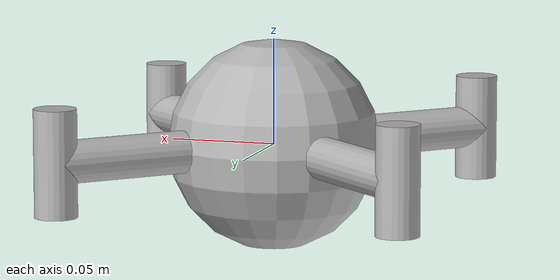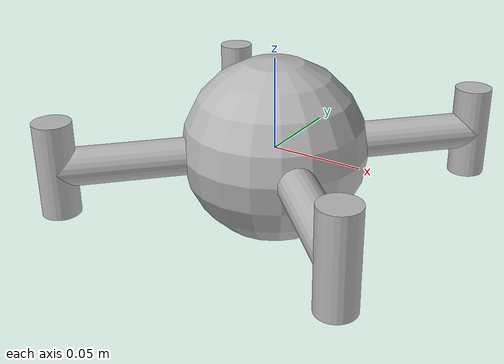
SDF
<sdf version='1.7'>
  <model name='multirotor'>
    <link name='base_link'>
      <inertial>
        <pose>0 0 0 0 -0 0</pose>
        <mass>0.257</mass>
        <inertia>
          <ixx>0.0004933</ixx>
          <ixy>-1e-07</ixy>
          <ixz>-2.1e-06</ixz>
          <iyy>0.0005977</iyy>
          <iyz>-3.7e-06</iyz>
          <izz>0.0008339</izz>
        </inertia>
      </inertial>
      <collision name='base_link_collision'>
        <pose>0 0 0 0 -0 0</pose>
        <geometry>
          <box>
            <size>0.11 0.11 0.11</size>
          </box>
        </geometry>
        <surface>
          <contact>
            <ode>
              <min_depth>0.001</min_depth>
              <max_vel>0</max_vel>
            </ode>
          </contact>
          <friction>
            <ode/>
          </friction>
        </surface>
      </collision>
      <visual name='base_link_visual'>
        <pose>0 0 0 0 -0 0</pose>
        <geometry>
          <sphere>
            <radius>0.05</radius>
          </sphere>
        </geometry>
      </visual>
      <gravity>1</gravity>
      <velocity_decay/>
    </link>
    <link name='/imu_link'>
      <pose>0 0 0 0 0 0</pose>
      <inertial>
        <pose>0 0 0 0 0 0</pose>
        <mass>0.0000001</mass>
        <inertia>
          <ixx>1e-09</ixx>
          <ixy>0</ixy>
          <ixz>0</ixz>
          <iyy>1e-09</iyy>
          <iyz>0</iyz>
          <izz>1e-09</izz>
        </inertia>
      </inertial>
    </link>
    <joint name='/imu_joint' type='revolute'>
      <child>/imu_link</child>
      <parent>base_link</parent>
      <axis>
        <xyz>1 0 0</xyz>
        <limit>
          <lower>0</lower>
          <upper>0</upper>
          <effort>0</effort>
          <velocity>0</velocity>
        </limit>
        <dynamics>
          <spring_reference>0</spring_reference>
          <spring_stiffness>0</spring_stiffness>
        </dynamics>
        <use_parent_model_frame>1</use_parent_model_frame>
      </axis>
    </joint>
    <joint name='base_link_to_arm_motor_0' type='fixed'>
      <pose relative_to='base_link'>0.04 -0.04 0 -1.5708 0 -2.35619</pose>
      <parent>base_link</parent>
      <child>arm_motor_0</child>
      <axis>
        <dynamics>
          <spring_reference>0</spring_reference>
          <spring_stiffness>0</spring_stiffness>
        </dynamics>
        <xyz>0 0 1</xyz>
        <limit>
          <lower>-1e+16</lower>
          <upper>1e+16</upper>
        </limit>
      </axis>
      <physics>
        <ode>
          <limit>
            <cfm>0</cfm>
            <erp>0.2</erp>
          </limit>
        </ode>
      </physics>
    </joint>
    <link name='arm_motor_0'>
      <pose relative_to='base_link_to_arm_motor_0'>0 0 0 0 -0 0</pose>
      <inertial>
        <pose>0 0 0 0 -0 0</pose>
        <mass>1e-07</mass>
        <inertia>
          <ixx>1e-09</ixx>
          <ixy>1e-09</ixy>
          <ixz>1e-09</ixz>
          <iyy>1e-09</iyy>
          <iyz>1e-09</iyz>
          <izz>1e-09</izz>
        </inertia>
      </inertial>
      <visual name='arm_motor_0_visual'>
        <pose>0 0 0 0 -0 0</pose>
        <geometry>
          <cylinder>
            <length>0.113137</length>
            <radius>0.01</radius>
          </cylinder>
        </geometry>
      </visual>
      <gravity>1</gravity>
      <velocity_decay/>
    </link>
    <joint name='base_link_to_arm_motor_1' type='fixed'>
      <pose relative_to='base_link'>-0.04 -0.04 0 1.5708 0 -0.785398</pose>
      <parent>base_link</parent>
      <child>arm_motor_1</child>
      <axis>
        <dynamics>
          <spring_reference>0</spring_reference>
          <spring_stiffness>0</spring_stiffness>
        </dynamics>
        <xyz>0 0 1</xyz>
        <limit>
          <lower>-1e+16</lower>
          <upper>1e+16</upper>
        </limit>
      </axis>
      <physics>
        <ode>
          <limit>
            <cfm>0</cfm>
            <erp>0.2</erp>
          </limit>
        </ode>
      </physics>
    </joint>
    <link name='arm_motor_1'>
      <pose relative_to='base_link_to_arm_motor_1'>0 0 0 0 -0 0</pose>
      <inertial>
        <pose>0 0 0 0 -0 0</pose>
        <mass>1e-07</mass>
        <inertia>
          <ixx>1e-09</ixx>
          <ixy>1e-09</ixy>
          <ixz>1e-09</ixz>
          <iyy>1e-09</iyy>
          <iyz>1e-09</iyz>
          <izz>1e-09</izz>
        </inertia>
      </inertial>
      <visual name='arm_motor_1_visual'>
        <pose>0 0 0 0 -0 0</pose>
        <geometry>
          <cylinder>
            <length>0.113137</length>
            <radius>0.01</radius>
          </cylinder>
        </geometry>
      </visual>
      <gravity>1</gravity>
      <velocity_decay/>
    </link>
    <joint name='base_link_to_arm_motor_2' type='fixed'>
      <pose relative_to='base_link'>-0.04 0.04 0 1.5708 0 -2.35619</pose>
      <parent>base_link</parent>
      <child>arm_motor_2</child>
      <axis>
        <dynamics>
          <spring_reference>0</spring_reference>
          <spring_stiffness>0</spring_stiffness>
        </dynamics>
        <xyz>0 0 1</xyz>
        <limit>
          <lower>-1e+16</lower>
          <upper>1e+16</upper>
        </limit>
      </axis>
      <physics>
        <ode>
          <limit>
            <cfm>0</cfm>
            <erp>0.2</erp>
          </limit>
        </ode>
      </physics>
    </joint>
    <link name='arm_motor_2'>
      <pose relative_to='base_link_to_arm_motor_2'>0 0 0 0 -0 0</pose>
      <inertial>
        <pose>0 0 0 0 -0 0</pose>
        <mass>1e-07</mass>
        <inertia>
          <ixx>1e-09</ixx>
          <ixy>1e-09</ixy>
          <ixz>1e-09</ixz>
          <iyy>1e-09</iyy>
          <iyz>1e-09</iyz>
          <izz>1e-09</izz>
        </inertia>
      </inertial>
      <visual name='arm_motor_2_visual'>
        <pose>0 0 0 0 -0 0</pose>
        <geometry>
          <cylinder>
            <length>0.113137</length>
            <radius>0.01</radius>
          </cylinder>
        </geometry>
      </visual>
      <gravity>1</gravity>
      <velocity_decay/>
    </link>
    <joint name='base_link_to_arm_motor_3' type='fixed'>
      <pose relative_to='base_link'>0.04 0.04 0 -1.5708 -0 -0.785398</pose>
      <parent>base_link</parent>
      <child>arm_motor_3</child>
      <axis>
        <dynamics>
          <spring_reference>0</spring_reference>
          <spring_stiffness>0</spring_stiffness>
        </dynamics>
        <xyz>0 0 1</xyz>
        <limit>
          <lower>-1e+16</lower>
          <upper>1e+16</upper>
        </limit>
      </axis>
      <physics>
        <ode>
          <limit>
            <cfm>0</cfm>
            <erp>0.2</erp>
          </limit>
        </ode>
      </physics>
    </joint>
    <link name='arm_motor_3'>
      <pose relative_to='base_link_to_arm_motor_3'>0 0 0 0 -0 0</pose>
      <inertial>
        <pose>0 0 0 0 -0 0</pose>
        <mass>1e-07</mass>
        <inertia>
          <ixx>1e-09</ixx>
          <ixy>1e-09</ixy>
          <ixz>1e-09</ixz>
          <iyy>1e-09</iyy>
          <iyz>1e-09</iyz>
          <izz>1e-09</izz>
        </inertia>
      </inertial>
      <visual name='arm_motor_3_visual'>
        <pose>0 0 0 0 -0 0</pose>
        <geometry>
          <cylinder>
            <length>0.113137</length>
            <radius>0.01</radius>
          </cylinder>
        </geometry>
      </visual>
      <gravity>1</gravity>
      <velocity_decay/>
    </link>
    <joint name='base_link_to_motor_0' type='revolute'>
      <pose relative_to='base_link'>0.08 -0.08 0 0 -0 0</pose>
      <parent>base_link</parent>
      <child>motor_0</child>
      <axis>
        <dynamics>
          <spring_reference>0</spring_reference>
          <spring_stiffness>0</spring_stiffness>
        </dynamics>
        <xyz>0 0 1</xyz>
        <limit>
          <lower>-1e+16</lower>
          <upper>1e+16</upper>
        </limit>
      </axis>
      <physics>
        <ode>
          <limit>
            <cfm>0</cfm>
            <erp>0.2</erp>
          </limit>
        </ode>
      </physics>
    </joint>
    <link name='motor_0'>
      <pose relative_to='base_link_to_motor_0'>0 0 0 0 -0 0</pose>
      <inertial>
        <pose>0 0 0 0 -0 0</pose>
        <mass>0.015</mass>
        <inertia>
          <ixx>2e-06</ixx>
          <ixy>1e-09</ixy>
          <ixz>1e-09</ixz>
          <iyy>2e-06</iyy>
          <iyz>1e-09</iyz>
          <izz>3e-06</izz>
        </inertia>
      </inertial>
      <visual name='motor_0_visual'>
        <pose>0 0 0 0 -0 0</pose>
        <geometry>
          <cylinder>
            <length>0.05</length>
            <radius>0.01</radius>
          </cylinder>
        </geometry>
      </visual>
      <gravity>1</gravity>
      <velocity_decay/>
    </link>
    <joint name='base_link_to_motor_1' type='revolute'>
      <pose relative_to='base_link'>-0.08 -0.08 0 0 -0 0</pose>
      <parent>base_link</parent>
      <child>motor_1</child>
      <axis>
        <dynamics>
          <spring_reference>0</spring_reference>
          <spring_stiffness>0</spring_stiffness>
        </dynamics>
        <xyz>0 0 1</xyz>
        <limit>
          <lower>-1e+16</lower>
          <upper>1e+16</upper>
        </limit>
      </axis>
      <physics>
        <ode>
          <limit>
            <cfm>0</cfm>
            <erp>0.2</erp>
          </limit>
        </ode>
      </physics>
    </joint>
    <link name='motor_1'>
      <pose relative_to='base_link_to_motor_1'>0 0 0 0 -0 0</pose>
      <inertial>
        <pose>0 0 0 0 -0 0</pose>
        <mass>0.015</mass>
        <inertia>
          <ixx>2e-06</ixx>
          <ixy>1e-09</ixy>
          <ixz>1e-09</ixz>
          <iyy>2e-06</iyy>
          <iyz>1e-09</iyz>
          <izz>3e-06</izz>
        </inertia>
      </inertial>
      <visual name='motor_1_visual'>
        <pose>0 0 0 0 -0 0</pose>
        <geometry>
          <cylinder>
            <length>0.05</length>
            <radius>0.01</radius>
          </cylinder>
        </geometry>
      </visual>
      <gravity>1</gravity>
      <velocity_decay/>
    </link>
    <joint name='base_link_to_motor_2' type='revolute'>
      <pose relative_to='base_link'>-0.08 0.08 0 0 -0 0</pose>
      <parent>base_link</parent>
      <child>motor_2</child>
      <axis>
        <dynamics>
          <spring_reference>0</spring_reference>
          <spring_stiffness>0</spring_stiffness>
        </dynamics>
        <xyz>0 0 1</xyz>
        <limit>
          <lower>-1e+16</lower>
          <upper>1e+16</upper>
        </limit>
      </axis>
      <physics>
        <ode>
          <limit>
            <cfm>0</cfm>
            <erp>0.2</erp>
          </limit>
        </ode>
      </physics>
    </joint>
    <link name='motor_2'>
      <pose relative_to='base_link_to_motor_2'>0 0 0 0 -0 0</pose>
      <inertial>
        <pose>0 0 0 0 -0 0</pose>
        <mass>0.015</mass>
        <inertia>
          <ixx>2e-06</ixx>
          <ixy>1e-09</ixy>
          <ixz>1e-09</ixz>
          <iyy>2e-06</iyy>
          <iyz>1e-09</iyz>
          <izz>3e-06</izz>
        </inertia>
      </inertial>
      <visual name='motor_2_visual'>
        <pose>0 0 0 0 -0 0</pose>
        <geometry>
          <cylinder>
            <length>0.05</length>
            <radius>0.01</radius>
          </cylinder>
        </geometry>
      </visual>
      <gravity>1</gravity>
      <velocity_decay/>
    </link>
    <joint name='base_link_to_motor_3' type='revolute'>
      <pose relative_to='base_link'>0.08 0.08 0 0 -0 0</pose>
      <parent>base_link</parent>
      <child>motor_3</child>
      <axis>
        <dynamics>
          <spring_reference>0</spring_reference>
          <spring_stiffness>0</spring_stiffness>
        </dynamics>
        <xyz>0 0 1</xyz>
        <limit>
          <lower>-1e+16</lower>
          <upper>1e+16</upper>
        </limit>
      </axis>
      <physics>
        <ode>
          <limit>
            <cfm>0</cfm>
            <erp>0.2</erp>
          </limit>
        </ode>
      </physics>
    </joint>
    <link name='motor_3'>
      <pose relative_to='base_link_to_motor_3'>0 0 0 0 -0 0</pose>
      <inertial>
        <pose>0 0 0 0 -0 0</pose>
        <mass>0.015</mass>
        <inertia>
          <ixx>2e-06</ixx>
          <ixy>1e-09</ixy>
          <ixz>1e-09</ixz>
          <iyy>2e-06</iyy>
          <iyz>1e-09</iyz>
          <izz>3e-06</izz>
        </inertia>
      </inertial>
      <visual name='motor_3_visual'>
        <pose>0 0 0 0 -0 0</pose>
        <geometry>
          <cylinder>
            <length>0.05</length>
            <radius>0.01</radius>
          </cylinder>
        </geometry>
      </visual>
      <gravity>1</gravity>
      <velocity_decay/>
    </link>
    <plugin name='rosbag' filename='libgazebo_multirotor_base_plugin.so'>
      <robotNamespace/>
      <linkName>base_link</linkName>
      <rotorVelocitySlowdownSim>10</rotorVelocitySlowdownSim>
    </plugin>
    <plugin name='front_right_motor_model' filename='libgazebo_motor_model.so'>
      <robotNamespace/>
      <jointName>base_link_to_motor_0</jointName>
      <linkName>motor_0</linkName>
      <turningDirection>cw</turningDirection>
      <timeConstantUp>0.1</timeConstantUp>
      <timeConstantDown>0.1</timeConstantDown>
      <maxRotVelocity>1100</maxRotVelocity>
      <motorConstant>5.84e-06</motorConstant>
      <momentConstant>0.01</momentConstant>
      <commandSubTopic>/gazebo/command/motor_speed</commandSubTopic>
      <motorNumber>0</motorNumber>
      <rotorDragCoefficient>0.000175</rotorDragCoefficient>
      <rollingMomentCoefficient>1e-06</rollingMomentCoefficient>
      <motorSpeedPubTopic>/motor_speed/0</motorSpeedPubTopic>
      <rotorVelocitySlowdownSim>10</rotorVelocitySlowdownSim>
    </plugin>
    <plugin name='back_left_motor_model' filename='libgazebo_motor_model.so'>
      <robotNamespace/>
      <jointName>base_link_to_motor_2</jointName>
      <linkName>motor_2</linkName>
      <turningDirection>cw</turningDirection>
      <timeConstantUp>0.1</timeConstantUp>
      <timeConstantDown>0.1</timeConstantDown>
      <maxRotVelocity>1100</maxRotVelocity>
      <motorConstant>5.84e-06</motorConstant>
      <momentConstant>0.01</momentConstant>
      <commandSubTopic>/gazebo/command/motor_speed</commandSubTopic>
      <motorNumber>1</motorNumber>
      <rotorDragCoefficient>0.000175</rotorDragCoefficient>
      <rollingMomentCoefficient>1e-06</rollingMomentCoefficient>
      <motorSpeedPubTopic>/motor_speed/1</motorSpeedPubTopic>
      <rotorVelocitySlowdownSim>10</rotorVelocitySlowdownSim>
    </plugin>
    <plugin name='front_left_motor_model' filename='libgazebo_motor_model.so'>
      <robotNamespace/>
      <jointName>base_link_to_motor_3</jointName>
      <linkName>motor_3</linkName>
      <turningDirection>ccw</turningDirection>
      <timeConstantUp>0.1</timeConstantUp>
      <timeConstantDown>0.1</timeConstantDown>
      <maxRotVelocity>1100</maxRotVelocity>
      <motorConstant>5.84e-06</motorConstant>
      <momentConstant>0.06</momentConstant>
      <commandSubTopic>/gazebo/command/motor_speed</commandSubTopic>
      <motorNumber>2</motorNumber>
      <rotorDragCoefficient>0.000175</rotorDragCoefficient>
      <rollingMomentCoefficient>1e-06</rollingMomentCoefficient>
      <motorSpeedPubTopic>/motor_speed/2</motorSpeedPubTopic>
      <rotorVelocitySlowdownSim>10</rotorVelocitySlowdownSim>
    </plugin>
    <plugin name='back_right_motor_model' filename='libgazebo_motor_model.so'>
      <robotNamespace/>
      <jointName>base_link_to_motor_1</jointName>
      <linkName>motor_1</linkName>
      <turningDirection>ccw</turningDirection>
      <timeConstantUp>0.1</timeConstantUp>
      <timeConstantDown>0.1</timeConstantDown>
      <maxRotVelocity>1100</maxRotVelocity>
      <motorConstant>5.84e-06</motorConstant>
      <momentConstant>0.06</momentConstant>
      <commandSubTopic>/gazebo/command/motor_speed</commandSubTopic>
      <motorNumber>3</motorNumber>
      <rotorDragCoefficient>0.000175</rotorDragCoefficient>
      <rollingMomentCoefficient>1e-06</rollingMomentCoefficient>
      <motorSpeedPubTopic>/motor_speed/3</motorSpeedPubTopic>
      <rotorVelocitySlowdownSim>10</rotorVelocitySlowdownSim>
    </plugin>
    <model name='gps0'>
      <link name='link'>
        <pose>0 0 0 0 0 0</pose>
        <inertial>
          <pose>0 0 0 0 0 0</pose>
          <mass>0.01</mass>
          <inertia>
            <ixx>2.1733e-06</ixx>
            <ixy>0</ixy>
            <ixz>0</ixz>
            <iyy>2.1733e-06</iyy>
            <iyz>0</iyz>
            <izz>1.8e-07</izz>
          </inertia>
        </inertial>
        <visual name='visual'>
          <geometry>
            <cylinder>
              <radius>0.01</radius>
              <length>0.002</length>
            </cylinder>
          </geometry>
          <material>
            <script>
              <name>Gazebo/Black</name>
              <uri>__default__</uri>
            </script>
          </material>
        </visual>
        <sensor name='gps' type='gps'>
          <pose>0 0 0 0 0 0</pose>
          <plugin name='gps_plugin' filename='libgazebo_gps_plugin.so'>
            <robotNamespace/>
            <gpsNoise>1</gpsNoise>
            <gpsXYRandomWalk>2.0</gpsXYRandomWalk>
            <gpsZRandomWalk>4.0</gpsZRandomWalk>
            <gpsXYNoiseDensity>0.0002</gpsXYNoiseDensity>
            <gpsZNoiseDensity>0.0004</gpsZNoiseDensity>
            <gpsVXYNoiseDensity>0.2</gpsVXYNoiseDensity>
            <gpsVZNoiseDensity>0.4</gpsVZNoiseDensity>
          </plugin>
        </sensor>
      </link>
    </model>
    <joint name='gps0_joint' type='fixed'>
      <parent>base_link</parent>
      <child>gps0::link</child>
    </joint>
    <plugin name='groundtruth_plugin' filename='libgazebo_groundtruth_plugin.so'>
      <robotNamespace/>
    </plugin>
    <plugin name='magnetometer_plugin' filename='libgazebo_magnetometer_plugin.so'>
      <robotNamespace/>
      <pubRate>100</pubRate>
      <noiseDensity>0.0004</noiseDensity>
      <randomWalk>6.4e-06</randomWalk>
      <biasCorrelationTime>600</biasCorrelationTime>
      <magTopic>/mag</magTopic>
    </plugin>
    <plugin name='barometer_plugin' filename='libgazebo_barometer_plugin.so'>
      <robotNamespace/>
      <pubRate>50</pubRate>
      <baroTopic>/baro</baroTopic>
      <baroDriftPaPerSec>0</baroDriftPaPerSec>
    </plugin>
    <plugin name='mavlink_interface' filename='libgazebo_mavlink_interface.so'>
      <robotNamespace/>
      <imuSubTopic>/imu</imuSubTopic>
      <magSubTopic>/mag</magSubTopic>
      <baroSubTopic>/baro</baroSubTopic>
      <mavlink_addr>INADDR_ANY</mavlink_addr>
      <mavlink_tcp_port>4560</mavlink_tcp_port>
      <mavlink_udp_port>14560</mavlink_udp_port>
      <serialEnabled>1</serialEnabled>
      <serialDevice>/dev/ttyUSB0</serialDevice>
      <baudRate>921600</baudRate>
      <qgc_addr>INADDR_ANY</qgc_addr>
      <qgc_udp_port>14550</qgc_udp_port>
      <sdk_addr>INADDR_ANY</sdk_addr>
      <sdk_udp_port>14540</sdk_udp_port>
      <hil_mode>1</hil_mode>
      <hil_state_level>0</hil_state_level>
      <send_vision_estimation>0</send_vision_estimation>
      <send_odometry>1</send_odometry>
      <enable_lockstep>0</enable_lockstep>
      <use_tcp>0</use_tcp>
      <motorSpeedCommandPubTopic>/gazebo/command/motor_speed</motorSpeedCommandPubTopic>
      <control_channels>
        <channel name='rotor1'>
          <input_index>0</input_index>
          <input_offset>0</input_offset>
          <input_scaling>1000</input_scaling>
          <zero_position_disarmed>0</zero_position_disarmed>
          <zero_position_armed>100</zero_position_armed>
          <joint_control_type>velocity</joint_control_type>
        </channel>
        <channel name='rotor2'>
          <input_index>1</input_index>
          <input_offset>0</input_offset>
          <input_scaling>1000</input_scaling>
          <zero_position_disarmed>0</zero_position_disarmed>
          <zero_position_armed>100</zero_position_armed>
          <joint_control_type>velocity</joint_control_type>
        </channel>
        <channel name='rotor3'>
          <input_index>2</input_index>
          <input_offset>0</input_offset>
          <input_scaling>1000</input_scaling>
          <zero_position_disarmed>0</zero_position_disarmed>
          <zero_position_armed>100</zero_position_armed>
          <joint_control_type>velocity</joint_control_type>
        </channel>
        <channel name='rotor4'>
          <input_index>3</input_index>
          <input_offset>0</input_offset>
          <input_scaling>1000</input_scaling>
          <zero_position_disarmed>0</zero_position_disarmed>
          <zero_position_armed>100</zero_position_armed>
          <joint_control_type>velocity</joint_control_type>
        </channel>
        <channel name='rotor5'>
          <input_index>4</input_index>
          <input_offset>1</input_offset>
          <input_scaling>324.6</input_scaling>
          <zero_position_disarmed>0</zero_position_disarmed>
          <zero_position_armed>0</zero_position_armed>
          <joint_control_type>velocity</joint_control_type>
          <joint_control_pid>
            <p>0.1</p>
            <i>0</i>
            <d>0</d>
            <iMax>0.0</iMax>
            <iMin>0.0</iMin>
            <cmdMax>2</cmdMax>
            <cmdMin>-2</cmdMin>
          </joint_control_pid>
          <joint_name>zephyr_delta_wing::propeller_joint</joint_name>
        </channel>
        <channel name='rotor6'>
          <input_index>5</input_index>
          <input_offset>0</input_offset>
          <input_scaling>0.524</input_scaling>
          <zero_position_disarmed>0</zero_position_disarmed>
          <zero_position_armed>0</zero_position_armed>
          <joint_control_type>position</joint_control_type>
          <joint_name>zephyr_delta_wing::flap_left_joint</joint_name>
          <joint_control_pid>
            <p>10.0</p>
            <i>0</i>
            <d>0</d>
            <iMax>0</iMax>
            <iMin>0</iMin>
            <cmdMax>20</cmdMax>
            <cmdMin>-20</cmdMin>
          </joint_control_pid>
        </channel>
        <channel name='rotor7'>
          <input_index>6</input_index>
          <input_offset>0</input_offset>
          <input_scaling>0.524</input_scaling>
          <zero_position_disarmed>0</zero_position_disarmed>
          <zero_position_armed>0</zero_position_armed>
          <joint_control_type>position</joint_control_type>
          <joint_name>zephyr_delta_wing::flap_right_joint</joint_name>
          <joint_control_pid>
            <p>10.0</p>
            <i>0</i>
            <d>0</d>
            <iMax>0</iMax>
            <iMin>0</iMin>
            <cmdMax>20</cmdMax>
            <cmdMin>-20</cmdMin>
          </joint_control_pid>
        </channel>
        <channel name='rotor8'>
          <input_index>7</input_index>
          <input_offset>0</input_offset>
          <input_scaling>0.524</input_scaling>
          <zero_position_disarmed>0</zero_position_disarmed>
          <zero_position_armed>0</zero_position_armed>
          <joint_control_type>position</joint_control_type>
        </channel>
      </control_channels>
    </plugin>
    <static>0</static>
    <plugin name='rotors_gazebo_imu_plugin' filename='libgazebo_imu_plugin.so'>
      <robotNamespace/>
      <linkName>/imu_link</linkName>
      <imuTopic>/imu</imuTopic>
      <gyroscopeNoiseDensity>0.00018665</gyroscopeNoiseDensity>
      <gyroscopeRandomWalk>3.8785e-05</gyroscopeRandomWalk>
      <gyroscopeBiasCorrelationTime>1000.0</gyroscopeBiasCorrelationTime>
      <gyroscopeTurnOnBiasSigma>0.0087</gyroscopeTurnOnBiasSigma>
      <accelerometerNoiseDensity>0.00186</accelerometerNoiseDensity>
      <accelerometerRandomWalk>0.006</accelerometerRandomWalk>
      <accelerometerBiasCorrelationTime>300.0</accelerometerBiasCorrelationTime>
      <accelerometerTurnOnBiasSigma>0.196</accelerometerTurnOnBiasSigma>
    </plugin>
  </model>
</sdf>
